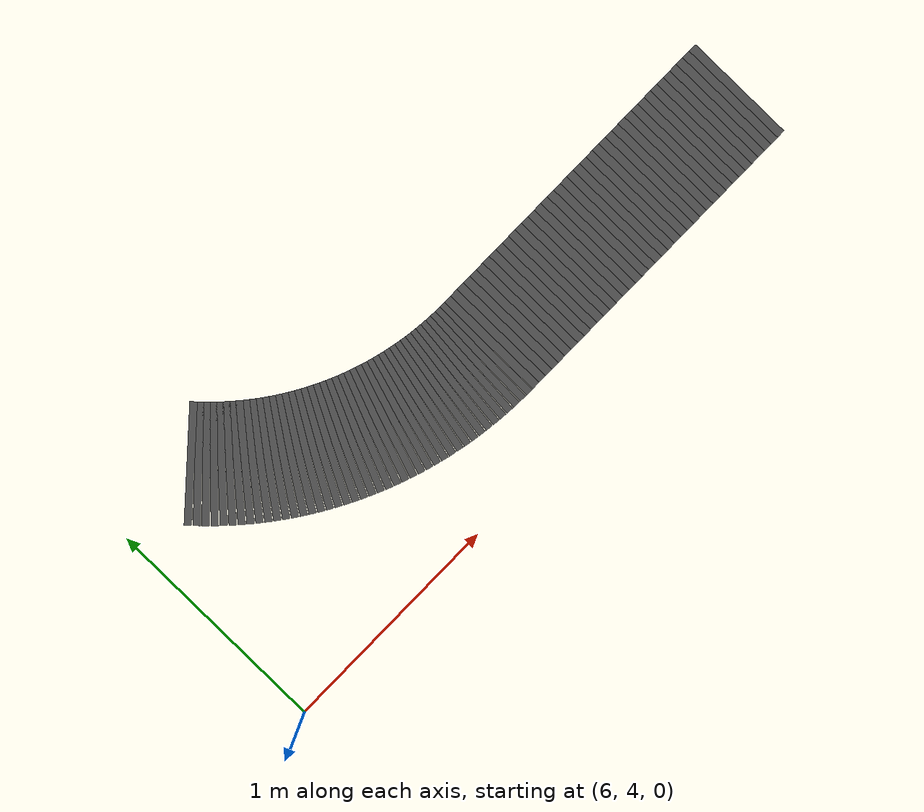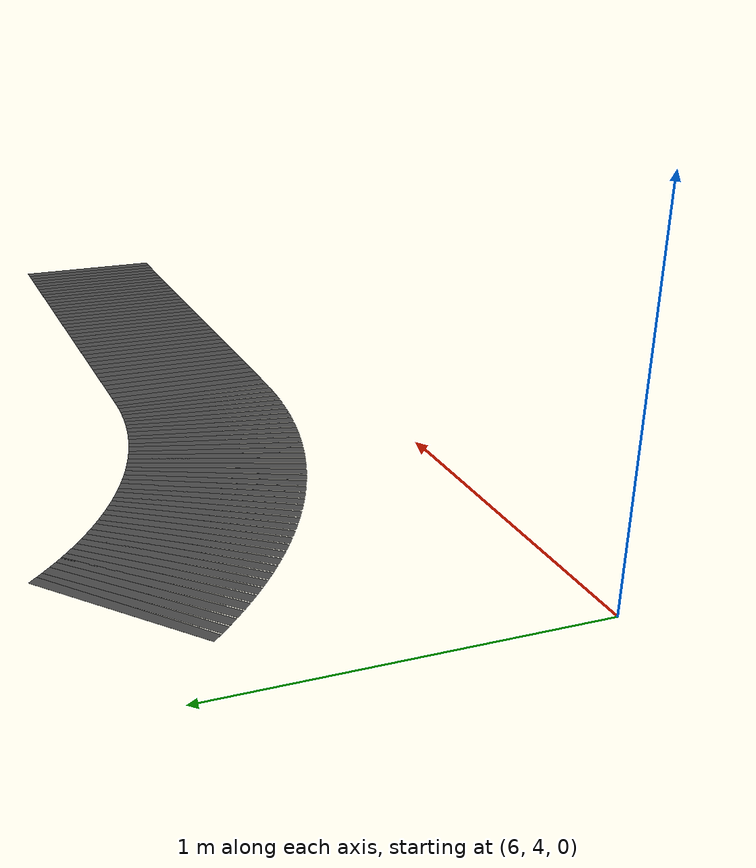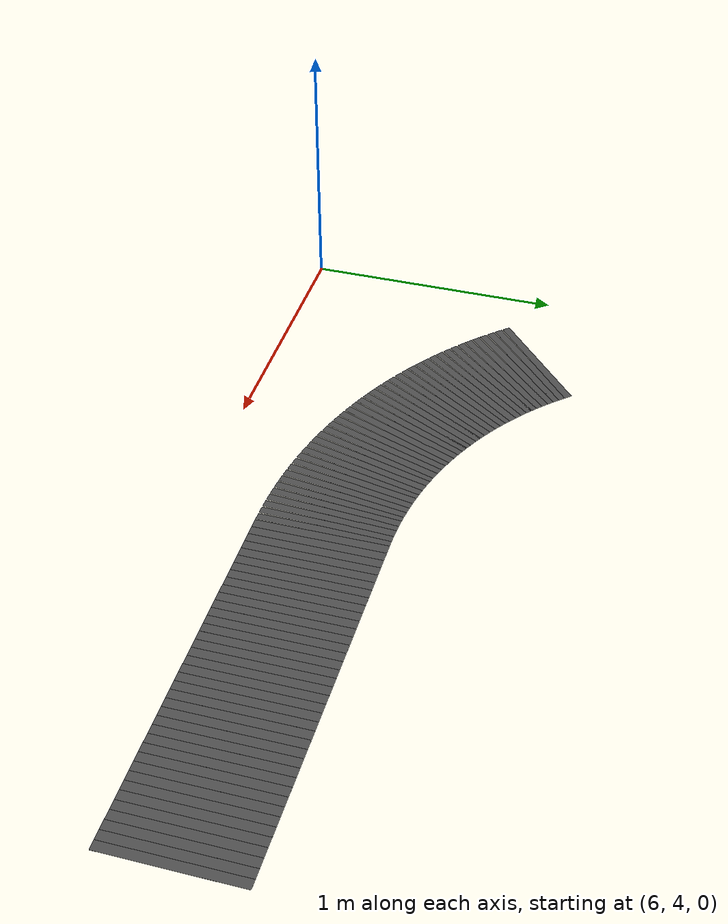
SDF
<sdf version="1.7">
 <model name="default">
  <model name="road_seg_391">
   <static>1</static>
   <link name="road_link">
    <visual name="road_visual">
     <geometry><box><size>0.031318 0.5 0.0001</size></box></geometry>
     <material>
      <script>
       <uri>model://road_material/materials/scripts</uri>
       <uri>model://road_material/materials/textures</uri>
       <name>MyRoad/Road</name>
      </script>
     </material>
    </visual>
    <collision name="road_collision"><geometry><box><size>0.031318 0.5 0.0001</size></box></geometry></collision>
   </link>
   <pose>6.39697 5.02976 0 0 0 -0.845049</pose>
  </model>
  <model name="road_seg_392">
   <static>1</static>
   <link name="road_link">
    <visual name="road_visual">
     <geometry><box><size>0.031318 0.5 0.0001</size></box></geometry>
     <material>
      <script>
       <uri>model://road_material/materials/scripts</uri>
       <uri>model://road_material/materials/textures</uri>
       <name>MyRoad/Road</name>
      </script>
     </material>
    </visual>
    <collision name="road_collision"><geometry><box><size>0.031318 0.5 0.0001</size></box></geometry></collision>
   </link>
   <pose>6.41799 5.00654 0 0 0 -0.825165</pose>
  </model>
  <model name="road_seg_393">
   <static>1</static>
   <link name="road_link">
    <visual name="road_visual">
     <geometry><box><size>0.031318 0.5 0.0001</size></box></geometry>
     <material>
      <script>
       <uri>model://road_material/materials/scripts</uri>
       <uri>model://road_material/materials/textures</uri>
       <name>MyRoad/Road</name>
      </script>
     </material>
    </visual>
    <collision name="road_collision"><geometry><box><size>0.031318 0.5 0.0001</size></box></geometry></collision>
   </link>
   <pose>6.43946 4.98375 0 0 0 -0.805282</pose>
  </model>
  <model name="road_seg_394">
   <static>1</static>
   <link name="road_link">
    <visual name="road_visual">
     <geometry><box><size>0.031318 0.5 0.0001</size></box></geometry>
     <material>
      <script>
       <uri>model://road_material/materials/scripts</uri>
       <uri>model://road_material/materials/textures</uri>
       <name>MyRoad/Road</name>
      </script>
     </material>
    </visual>
    <collision name="road_collision"><geometry><box><size>0.031318 0.5 0.0001</size></box></geometry></collision>
   </link>
   <pose>6.46138 4.96138 0 0 0 -0.785398</pose>
  </model>
  <model name="road_seg_395">
   <static>1</static>
   <link name="road_link">
    <visual name="road_visual">
     <geometry><box><size>0.031318 0.5 0.0001</size></box></geometry>
     <material>
      <script>
       <uri>model://road_material/materials/scripts</uri>
       <uri>model://road_material/materials/textures</uri>
       <name>MyRoad/Road</name>
      </script>
     </material>
    </visual>
    <collision name="road_collision"><geometry><box><size>0.031318 0.5 0.0001</size></box></geometry></collision>
   </link>
   <pose>6.48375 4.93946 0 0 0 -0.765515</pose>
  </model>
  <model name="road_seg_396">
   <static>1</static>
   <link name="road_link">
    <visual name="road_visual">
     <geometry><box><size>0.031318 0.5 0.0001</size></box></geometry>
     <material>
      <script>
       <uri>model://road_material/materials/scripts</uri>
       <uri>model://road_material/materials/textures</uri>
       <name>MyRoad/Road</name>
      </script>
     </material>
    </visual>
    <collision name="road_collision"><geometry><box><size>0.031318 0.5 0.0001</size></box></geometry></collision>
   </link>
   <pose>6.50654 4.91799 0 0 0 -0.745631</pose>
  </model>
  <model name="road_seg_397">
   <static>1</static>
   <link name="road_link">
    <visual name="road_visual">
     <geometry><box><size>0.031318 0.5 0.0001</size></box></geometry>
     <material>
      <script>
       <uri>model://road_material/materials/scripts</uri>
       <uri>model://road_material/materials/textures</uri>
       <name>MyRoad/Road</name>
      </script>
     </material>
    </visual>
    <collision name="road_collision"><geometry><box><size>0.031318 0.5 0.0001</size></box></geometry></collision>
   </link>
   <pose>6.52976 4.89697 0 0 0 -0.725748</pose>
  </model>
  <model name="road_seg_398">
   <static>1</static>
   <link name="road_link">
    <visual name="road_visual">
     <geometry><box><size>0.031318 0.5 0.0001</size></box></geometry>
     <material>
      <script>
       <uri>model://road_material/materials/scripts</uri>
       <uri>model://road_material/materials/textures</uri>
       <name>MyRoad/Road</name>
      </script>
     </material>
    </visual>
    <collision name="road_collision"><geometry><box><size>0.031318 0.5 0.0001</size></box></geometry></collision>
   </link>
   <pose>6.55339 4.87642 0 0 0 -0.705864</pose>
  </model>
  <model name="road_seg_399">
   <static>1</static>
   <link name="road_link">
    <visual name="road_visual">
     <geometry><box><size>0.031318 0.5 0.0001</size></box></geometry>
     <material>
      <script>
       <uri>model://road_material/materials/scripts</uri>
       <uri>model://road_material/materials/textures</uri>
       <name>MyRoad/Road</name>
      </script>
     </material>
    </visual>
    <collision name="road_collision"><geometry><box><size>0.031318 0.5 0.0001</size></box></geometry></collision>
   </link>
   <pose>6.57742 4.85635 0 0 0 -0.685981</pose>
  </model>
  <model name="road_seg_400">
   <static>1</static>
   <link name="road_link">
    <visual name="road_visual">
     <geometry><box><size>0.031318 0.5 0.0001</size></box></geometry>
     <material>
      <script>
       <uri>model://road_material/materials/scripts</uri>
       <uri>model://road_material/materials/textures</uri>
       <name>MyRoad/Road</name>
      </script>
     </material>
    </visual>
    <collision name="road_collision"><geometry><box><size>0.031318 0.5 0.0001</size></box></geometry></collision>
   </link>
   <pose>6.60185 4.83675 0 0 0 -0.666097</pose>
  </model>
  <model name="road_seg_401">
   <static>1</static>
   <link name="road_link">
    <visual name="road_visual">
     <geometry><box><size>0.031318 0.5 0.0001</size></box></geometry>
     <material>
      <script>
       <uri>model://road_material/materials/scripts</uri>
       <uri>model://road_material/materials/textures</uri>
       <name>MyRoad/Road</name>
      </script>
     </material>
    </visual>
    <collision name="road_collision"><geometry><box><size>0.031318 0.5 0.0001</size></box></geometry></collision>
   </link>
   <pose>6.62666 4.81765 0 0 0 -0.646214</pose>
  </model>
  <model name="road_seg_402">
   <static>1</static>
   <link name="road_link">
    <visual name="road_visual">
     <geometry><box><size>0.031318 0.5 0.0001</size></box></geometry>
     <material>
      <script>
       <uri>model://road_material/materials/scripts</uri>
       <uri>model://road_material/materials/textures</uri>
       <name>MyRoad/Road</name>
      </script>
     </material>
    </visual>
    <collision name="road_collision"><geometry><box><size>0.031318 0.5 0.0001</size></box></geometry></collision>
   </link>
   <pose>6.65185 4.79904 0 0 0 -0.62633</pose>
  </model>
  <model name="road_seg_403">
   <static>1</static>
   <link name="road_link">
    <visual name="road_visual">
     <geometry><box><size>0.031318 0.5 0.0001</size></box></geometry>
     <material>
      <script>
       <uri>model://road_material/materials/scripts</uri>
       <uri>model://road_material/materials/textures</uri>
       <name>MyRoad/Road</name>
      </script>
     </material>
    </visual>
    <collision name="road_collision"><geometry><box><size>0.031318 0.5 0.0001</size></box></geometry></collision>
   </link>
   <pose>6.6774 4.78093 0 0 0 -0.606447</pose>
  </model>
  <model name="road_seg_404">
   <static>1</static>
   <link name="road_link">
    <visual name="road_visual">
     <geometry><box><size>0.031318 0.5 0.0001</size></box></geometry>
     <material>
      <script>
       <uri>model://road_material/materials/scripts</uri>
       <uri>model://road_material/materials/textures</uri>
       <name>MyRoad/Road</name>
      </script>
     </material>
    </visual>
    <collision name="road_collision"><geometry><box><size>0.031318 0.5 0.0001</size></box></geometry></collision>
   </link>
   <pose>6.70331 4.76334 0 0 0 -0.586563</pose>
  </model>
  <model name="road_seg_405">
   <static>1</static>
   <link name="road_link">
    <visual name="road_visual">
     <geometry><box><size>0.031318 0.5 0.0001</size></box></geometry>
     <material>
      <script>
       <uri>model://road_material/materials/scripts</uri>
       <uri>model://road_material/materials/textures</uri>
       <name>MyRoad/Road</name>
      </script>
     </material>
    </visual>
    <collision name="road_collision"><geometry><box><size>0.031318 0.5 0.0001</size></box></geometry></collision>
   </link>
   <pose>6.72956 4.74627 0 0 0 -0.56668</pose>
  </model>
  <model name="road_seg_406">
   <static>1</static>
   <link name="road_link">
    <visual name="road_visual">
     <geometry><box><size>0.031318 0.5 0.0001</size></box></geometry>
     <material>
      <script>
       <uri>model://road_material/materials/scripts</uri>
       <uri>model://road_material/materials/textures</uri>
       <name>MyRoad/Road</name>
      </script>
     </material>
    </visual>
    <collision name="road_collision"><geometry><box><size>0.031318 0.5 0.0001</size></box></geometry></collision>
   </link>
   <pose>6.75615 4.72972 0 0 0 -0.546796</pose>
  </model>
  <model name="road_seg_407">
   <static>1</static>
   <link name="road_link">
    <visual name="road_visual">
     <geometry><box><size>0.031318 0.5 0.0001</size></box></geometry>
     <material>
      <script>
       <uri>model://road_material/materials/scripts</uri>
       <uri>model://road_material/materials/textures</uri>
       <name>MyRoad/Road</name>
      </script>
     </material>
    </visual>
    <collision name="road_collision"><geometry><box><size>0.031318 0.5 0.0001</size></box></geometry></collision>
   </link>
   <pose>6.78306 4.71371 0 0 0 -0.526913</pose>
  </model>
  <model name="road_seg_408">
   <static>1</static>
   <link name="road_link">
    <visual name="road_visual">
     <geometry><box><size>0.031318 0.5 0.0001</size></box></geometry>
     <material>
      <script>
       <uri>model://road_material/materials/scripts</uri>
       <uri>model://road_material/materials/textures</uri>
       <name>MyRoad/Road</name>
      </script>
     </material>
    </visual>
    <collision name="road_collision"><geometry><box><size>0.031318 0.5 0.0001</size></box></geometry></collision>
   </link>
   <pose>6.81029 4.69823 0 0 0 -0.507029</pose>
  </model>
  <model name="road_seg_409">
   <static>1</static>
   <link name="road_link">
    <visual name="road_visual">
     <geometry><box><size>0.031318 0.5 0.0001</size></box></geometry>
     <material>
      <script>
       <uri>model://road_material/materials/scripts</uri>
       <uri>model://road_material/materials/textures</uri>
       <name>MyRoad/Road</name>
      </script>
     </material>
    </visual>
    <collision name="road_collision"><geometry><box><size>0.031318 0.5 0.0001</size></box></geometry></collision>
   </link>
   <pose>6.83781 4.68329 0 0 0 -0.487146</pose>
  </model>
  <model name="road_seg_410">
   <static>1</static>
   <link name="road_link">
    <visual name="road_visual">
     <geometry><box><size>0.031318 0.5 0.0001</size></box></geometry>
     <material>
      <script>
       <uri>model://road_material/materials/scripts</uri>
       <uri>model://road_material/materials/textures</uri>
       <name>MyRoad/Road</name>
      </script>
     </material>
    </visual>
    <collision name="road_collision"><geometry><box><size>0.031318 0.5 0.0001</size></box></geometry></collision>
   </link>
   <pose>6.86563 4.66891 0 0 0 -0.467262</pose>
  </model>
  <model name="road_seg_411">
   <static>1</static>
   <link name="road_link">
    <visual name="road_visual">
     <geometry><box><size>0.031318 0.5 0.0001</size></box></geometry>
     <material>
      <script>
       <uri>model://road_material/materials/scripts</uri>
       <uri>model://road_material/materials/textures</uri>
       <name>MyRoad/Road</name>
      </script>
     </material>
    </visual>
    <collision name="road_collision"><geometry><box><size>0.031318 0.5 0.0001</size></box></geometry></collision>
   </link>
   <pose>6.89373 4.65508 0 0 0 -0.447379</pose>
  </model>
  <model name="road_seg_412">
   <static>1</static>
   <link name="road_link">
    <visual name="road_visual">
     <geometry><box><size>0.031318 0.5 0.0001</size></box></geometry>
     <material>
      <script>
       <uri>model://road_material/materials/scripts</uri>
       <uri>model://road_material/materials/textures</uri>
       <name>MyRoad/Road</name>
      </script>
     </material>
    </visual>
    <collision name="road_collision"><geometry><box><size>0.031318 0.5 0.0001</size></box></geometry></collision>
   </link>
   <pose>6.92209 4.64182 0 0 0 -0.427495</pose>
  </model>
  <model name="road_seg_413">
   <static>1</static>
   <link name="road_link">
    <visual name="road_visual">
     <geometry><box><size>0.031318 0.5 0.0001</size></box></geometry>
     <material>
      <script>
       <uri>model://road_material/materials/scripts</uri>
       <uri>model://road_material/materials/textures</uri>
       <name>MyRoad/Road</name>
      </script>
     </material>
    </visual>
    <collision name="road_collision"><geometry><box><size>0.031318 0.5 0.0001</size></box></geometry></collision>
   </link>
   <pose>6.95072 4.62912 0 0 0 -0.407612</pose>
  </model>
  <model name="road_seg_414">
   <static>1</static>
   <link name="road_link">
    <visual name="road_visual">
     <geometry><box><size>0.031318 0.5 0.0001</size></box></geometry>
     <material>
      <script>
       <uri>model://road_material/materials/scripts</uri>
       <uri>model://road_material/materials/textures</uri>
       <name>MyRoad/Road</name>
      </script>
     </material>
    </visual>
    <collision name="road_collision"><geometry><box><size>0.031318 0.5 0.0001</size></box></geometry></collision>
   </link>
   <pose>6.97959 4.61699 0 0 0 -0.387728</pose>
  </model>
  <model name="road_seg_415">
   <static>1</static>
   <link name="road_link">
    <visual name="road_visual">
     <geometry><box><size>0.031318 0.5 0.0001</size></box></geometry>
     <material>
      <script>
       <uri>model://road_material/materials/scripts</uri>
       <uri>model://road_material/materials/textures</uri>
       <name>MyRoad/Road</name>
      </script>
     </material>
    </visual>
    <collision name="road_collision"><geometry><box><size>0.031318 0.5 0.0001</size></box></geometry></collision>
   </link>
   <pose>7.0087 4.60544 0 0 0 -0.367845</pose>
  </model>
  <model name="road_seg_416">
   <static>1</static>
   <link name="road_link">
    <visual name="road_visual">
     <geometry><box><size>0.031318 0.5 0.0001</size></box></geometry>
     <material>
      <script>
       <uri>model://road_material/materials/scripts</uri>
       <uri>model://road_material/materials/textures</uri>
       <name>MyRoad/Road</name>
      </script>
     </material>
    </visual>
    <collision name="road_collision"><geometry><box><size>0.031318 0.5 0.0001</size></box></geometry></collision>
   </link>
   <pose>7.03803 4.59447 0 0 0 -0.347961</pose>
  </model>
  <model name="road_seg_417">
   <static>1</static>
   <link name="road_link">
    <visual name="road_visual">
     <geometry><box><size>0.031318 0.5 0.0001</size></box></geometry>
     <material>
      <script>
       <uri>model://road_material/materials/scripts</uri>
       <uri>model://road_material/materials/textures</uri>
       <name>MyRoad/Road</name>
      </script>
     </material>
    </visual>
    <collision name="road_collision"><geometry><box><size>0.031318 0.5 0.0001</size></box></geometry></collision>
   </link>
   <pose>7.06758 4.58408 0 0 0 -0.328078</pose>
  </model>
  <model name="road_seg_418">
   <static>1</static>
   <link name="road_link">
    <visual name="road_visual">
     <geometry><box><size>0.031318 0.5 0.0001</size></box></geometry>
     <material>
      <script>
       <uri>model://road_material/materials/scripts</uri>
       <uri>model://road_material/materials/textures</uri>
       <name>MyRoad/Road</name>
      </script>
     </material>
    </visual>
    <collision name="road_collision"><geometry><box><size>0.031318 0.5 0.0001</size></box></geometry></collision>
   </link>
   <pose>7.09732 4.57429 0 0 0 -0.308194</pose>
  </model>
  <model name="road_seg_419">
   <static>1</static>
   <link name="road_link">
    <visual name="road_visual">
     <geometry><box><size>0.031318 0.5 0.0001</size></box></geometry>
     <material>
      <script>
       <uri>model://road_material/materials/scripts</uri>
       <uri>model://road_material/materials/textures</uri>
       <name>MyRoad/Road</name>
      </script>
     </material>
    </visual>
    <collision name="road_collision"><geometry><box><size>0.031318 0.5 0.0001</size></box></geometry></collision>
   </link>
   <pose>7.12725 4.56509 0 0 0 -0.288311</pose>
  </model>
  <model name="road_seg_420">
   <static>1</static>
   <link name="road_link">
    <visual name="road_visual">
     <geometry><box><size>0.031318 0.5 0.0001</size></box></geometry>
     <material>
      <script>
       <uri>model://road_material/materials/scripts</uri>
       <uri>model://road_material/materials/textures</uri>
       <name>MyRoad/Road</name>
      </script>
     </material>
    </visual>
    <collision name="road_collision"><geometry><box><size>0.031318 0.5 0.0001</size></box></geometry></collision>
   </link>
   <pose>7.15736 4.55648 0 0 0 -0.268427</pose>
  </model>
  <model name="road_seg_421">
   <static>1</static>
   <link name="road_link">
    <visual name="road_visual">
     <geometry><box><size>0.031318 0.5 0.0001</size></box></geometry>
     <material>
      <script>
       <uri>model://road_material/materials/scripts</uri>
       <uri>model://road_material/materials/textures</uri>
       <name>MyRoad/Road</name>
      </script>
     </material>
    </visual>
    <collision name="road_collision"><geometry><box><size>0.031318 0.5 0.0001</size></box></geometry></collision>
   </link>
   <pose>7.18764 4.54847 0 0 0 -0.248544</pose>
  </model>
  <model name="road_seg_422">
   <static>1</static>
   <link name="road_link">
    <visual name="road_visual">
     <geometry><box><size>0.031318 0.5 0.0001</size></box></geometry>
     <material>
      <script>
       <uri>model://road_material/materials/scripts</uri>
       <uri>model://road_material/materials/textures</uri>
       <name>MyRoad/Road</name>
      </script>
     </material>
    </visual>
    <collision name="road_collision"><geometry><box><size>0.031318 0.5 0.0001</size></box></geometry></collision>
   </link>
   <pose>7.21807 4.54107 0 0 0 -0.22866</pose>
  </model>
  <model name="road_seg_423">
   <static>1</static>
   <link name="road_link">
    <visual name="road_visual">
     <geometry><box><size>0.031318 0.5 0.0001</size></box></geometry>
     <material>
      <script>
       <uri>model://road_material/materials/scripts</uri>
       <uri>model://road_material/materials/textures</uri>
       <name>MyRoad/Road</name>
      </script>
     </material>
    </visual>
    <collision name="road_collision"><geometry><box><size>0.031318 0.5 0.0001</size></box></geometry></collision>
   </link>
   <pose>7.24864 4.53428 0 0 0 -0.208777</pose>
  </model>
  <model name="road_seg_424">
   <static>1</static>
   <link name="road_link">
    <visual name="road_visual">
     <geometry><box><size>0.031318 0.5 0.0001</size></box></geometry>
     <material>
      <script>
       <uri>model://road_material/materials/scripts</uri>
       <uri>model://road_material/materials/textures</uri>
       <name>MyRoad/Road</name>
      </script>
     </material>
    </visual>
    <collision name="road_collision"><geometry><box><size>0.031318 0.5 0.0001</size></box></geometry></collision>
   </link>
   <pose>7.27934 4.52809 0 0 0 -0.188893</pose>
  </model>
  <model name="road_seg_425">
   <static>1</static>
   <link name="road_link">
    <visual name="road_visual">
     <geometry><box><size>0.031318 0.5 0.0001</size></box></geometry>
     <material>
      <script>
       <uri>model://road_material/materials/scripts</uri>
       <uri>model://road_material/materials/textures</uri>
       <name>MyRoad/Road</name>
      </script>
     </material>
    </visual>
    <collision name="road_collision"><geometry><box><size>0.031318 0.5 0.0001</size></box></geometry></collision>
   </link>
   <pose>7.31015 4.52252 0 0 0 -0.16901</pose>
  </model>
  <model name="road_seg_426">
   <static>1</static>
   <link name="road_link">
    <visual name="road_visual">
     <geometry><box><size>0.031318 0.5 0.0001</size></box></geometry>
     <material>
      <script>
       <uri>model://road_material/materials/scripts</uri>
       <uri>model://road_material/materials/textures</uri>
       <name>MyRoad/Road</name>
      </script>
     </material>
    </visual>
    <collision name="road_collision"><geometry><box><size>0.031318 0.5 0.0001</size></box></geometry></collision>
   </link>
   <pose>7.34107 4.51756 0 0 0 -0.149126</pose>
  </model>
  <model name="road_seg_427">
   <static>1</static>
   <link name="road_link">
    <visual name="road_visual">
     <geometry><box><size>0.031318 0.5 0.0001</size></box></geometry>
     <material>
      <script>
       <uri>model://road_material/materials/scripts</uri>
       <uri>model://road_material/materials/textures</uri>
       <name>MyRoad/Road</name>
      </script>
     </material>
    </visual>
    <collision name="road_collision"><geometry><box><size>0.031318 0.5 0.0001</size></box></geometry></collision>
   </link>
   <pose>7.37209 4.51321 0 0 0 -0.129243</pose>
  </model>
  <model name="road_seg_428">
   <static>1</static>
   <link name="road_link">
    <visual name="road_visual">
     <geometry><box><size>0.031318 0.5 0.0001</size></box></geometry>
     <material>
      <script>
       <uri>model://road_material/materials/scripts</uri>
       <uri>model://road_material/materials/textures</uri>
       <name>MyRoad/Road</name>
      </script>
     </material>
    </visual>
    <collision name="road_collision"><geometry><box><size>0.031318 0.5 0.0001</size></box></geometry></collision>
   </link>
   <pose>7.40318 4.50949 0 0 0 -0.109359</pose>
  </model>
  <model name="road_seg_429">
   <static>1</static>
   <link name="road_link">
    <visual name="road_visual">
     <geometry><box><size>0.031318 0.5 0.0001</size></box></geometry>
     <material>
      <script>
       <uri>model://road_material/materials/scripts</uri>
       <uri>model://road_material/materials/textures</uri>
       <name>MyRoad/Road</name>
      </script>
     </material>
    </visual>
    <collision name="road_collision"><geometry><box><size>0.031318 0.5 0.0001</size></box></geometry></collision>
   </link>
   <pose>7.43434 4.50638 0 0 0 -0.089476</pose>
  </model>
  <model name="road_seg_430">
   <static>1</static>
   <link name="road_link">
    <visual name="road_visual">
     <geometry><box><size>0.031318 0.5 0.0001</size></box></geometry>
     <material>
      <script>
       <uri>model://road_material/materials/scripts</uri>
       <uri>model://road_material/materials/textures</uri>
       <name>MyRoad/Road</name>
      </script>
     </material>
    </visual>
    <collision name="road_collision"><geometry><box><size>0.031318 0.5 0.0001</size></box></geometry></collision>
   </link>
   <pose>7.46556 4.50389 0 0 0 -0.069592</pose>
  </model>
  <model name="road_seg_431">
   <static>1</static>
   <link name="road_link">
    <visual name="road_visual">
     <geometry><box><size>0.031318 0.5 0.0001</size></box></geometry>
     <material>
      <script>
       <uri>model://road_material/materials/scripts</uri>
       <uri>model://road_material/materials/textures</uri>
       <name>MyRoad/Road</name>
      </script>
     </material>
    </visual>
    <collision name="road_collision"><geometry><box><size>0.031318 0.5 0.0001</size></box></geometry></collision>
   </link>
   <pose>7.49682 4.50202 0 0 0 -0.049709</pose>
  </model>
  <model name="road_seg_432">
   <static>1</static>
   <link name="road_link">
    <visual name="road_visual">
     <geometry><box><size>0.031318 0.5 0.0001</size></box></geometry>
     <material>
      <script>
       <uri>model://road_material/materials/scripts</uri>
       <uri>model://road_material/materials/textures</uri>
       <name>MyRoad/Road</name>
      </script>
     </material>
    </visual>
    <collision name="road_collision"><geometry><box><size>0.031318 0.5 0.0001</size></box></geometry></collision>
   </link>
   <pose>7.52811 4.50078 0 0 0 -0.029825</pose>
  </model>
  <model name="road_seg_433">
   <static>1</static>
   <link name="road_link">
    <visual name="road_visual">
     <geometry><box><size>0.031318 0.5 0.0001</size></box></geometry>
     <material>
      <script>
       <uri>model://road_material/materials/scripts</uri>
       <uri>model://road_material/materials/textures</uri>
       <name>MyRoad/Road</name>
      </script>
     </material>
    </visual>
    <collision name="road_collision"><geometry><box><size>0.031318 0.5 0.0001</size></box></geometry></collision>
   </link>
   <pose>7.55942 4.50016 0 0 0 -0.009942</pose>
  </model>
  <model name="road_seg_434">
   <static>1</static>
   <link name="road_link">
    <visual name="road_visual">
     <geometry><box><size>0.037275 0.5 0.0001</size></box></geometry>
     <material>
      <script>
       <uri>model://road_material/materials/scripts</uri>
       <uri>model://road_material/materials/textures</uri>
       <name>MyRoad/Road</name>
      </script>
     </material>
    </visual>
    <collision name="road_collision"><geometry><box><size>0.037275 0.5 0.0001</size></box></geometry></collision>
   </link>
   <pose>7.59372 4.5 0 0 -0 0</pose>
  </model>
  <model name="road_seg_435">
   <static>1</static>
   <link name="road_link">
    <visual name="road_visual">
     <geometry><box><size>0.037275 0.5 0.0001</size></box></geometry>
     <material>
      <script>
       <uri>model://road_material/materials/scripts</uri>
       <uri>model://road_material/materials/textures</uri>
       <name>MyRoad/Road</name>
      </script>
     </material>
    </visual>
    <collision name="road_collision"><geometry><box><size>0.037275 0.5 0.0001</size></box></geometry></collision>
   </link>
   <pose>7.63099 4.5 0 0 -0 0</pose>
  </model>
  <model name="road_seg_436">
   <static>1</static>
   <link name="road_link">
    <visual name="road_visual">
     <geometry><box><size>0.037275 0.5 0.0001</size></box></geometry>
     <material>
      <script>
       <uri>model://road_material/materials/scripts</uri>
       <uri>model://road_material/materials/textures</uri>
       <name>MyRoad/Road</name>
      </script>
     </material>
    </visual>
    <collision name="road_collision"><geometry><box><size>0.037275 0.5 0.0001</size></box></geometry></collision>
   </link>
   <pose>7.66827 4.5 0 0 -0 0</pose>
  </model>
  <model name="road_seg_437">
   <static>1</static>
   <link name="road_link">
    <visual name="road_visual">
     <geometry><box><size>0.037275 0.5 0.0001</size></box></geometry>
     <material>
      <script>
       <uri>model://road_material/materials/scripts</uri>
       <uri>model://road_material/materials/textures</uri>
       <name>MyRoad/Road</name>
      </script>
     </material>
    </visual>
    <collision name="road_collision"><geometry><box><size>0.037275 0.5 0.0001</size></box></geometry></collision>
   </link>
   <pose>7.70554 4.5 0 0 -0 0</pose>
  </model>
  <model name="road_seg_438">
   <static>1</static>
   <link name="road_link">
    <visual name="road_visual">
     <geometry><box><size>0.037275 0.5 0.0001</size></box></geometry>
     <material>
      <script>
       <uri>model://road_material/materials/scripts</uri>
       <uri>model://road_material/materials/textures</uri>
       <name>MyRoad/Road</name>
      </script>
     </material>
    </visual>
    <collision name="road_collision"><geometry><box><size>0.037275 0.5 0.0001</size></box></geometry></collision>
   </link>
   <pose>7.74282 4.5 0 0 -0 0</pose>
  </model>
  <model name="road_seg_439">
   <static>1</static>
   <link name="road_link">
    <visual name="road_visual">
     <geometry><box><size>0.037275 0.5 0.0001</size></box></geometry>
     <material>
      <script>
       <uri>model://road_material/materials/scripts</uri>
       <uri>model://road_material/materials/textures</uri>
       <name>MyRoad/Road</name>
      </script>
     </material>
    </visual>
    <collision name="road_collision"><geometry><box><size>0.037275 0.5 0.0001</size></box></geometry></collision>
   </link>
   <pose>7.78009 4.5 0 0 -0 0</pose>
  </model>
  <model name="road_seg_440">
   <static>1</static>
   <link name="road_link">
    <visual name="road_visual">
     <geometry><box><size>0.037275 0.5 0.0001</size></box></geometry>
     <material>
      <script>
       <uri>model://road_material/materials/scripts</uri>
       <uri>model://road_material/materials/textures</uri>
       <name>MyRoad/Road</name>
      </script>
     </material>
    </visual>
    <collision name="road_collision"><geometry><box><size>0.037275 0.5 0.0001</size></box></geometry></collision>
   </link>
   <pose>7.81737 4.5 0 0 -0 0</pose>
  </model>
  <model name="road_seg_441">
   <static>1</static>
   <link name="road_link">
    <visual name="road_visual">
     <geometry><box><size>0.037275 0.5 0.0001</size></box></geometry>
     <material>
      <script>
       <uri>model://road_material/materials/scripts</uri>
       <uri>model://road_material/materials/textures</uri>
       <name>MyRoad/Road</name>
      </script>
     </material>
    </visual>
    <collision name="road_collision"><geometry><box><size>0.037275 0.5 0.0001</size></box></geometry></collision>
   </link>
   <pose>7.85464 4.5 0 0 -0 0</pose>
  </model>
  <model name="road_seg_442">
   <static>1</static>
   <link name="road_link">
    <visual name="road_visual">
     <geometry><box><size>0.037275 0.5 0.0001</size></box></geometry>
     <material>
      <script>
       <uri>model://road_material/materials/scripts</uri>
       <uri>model://road_material/materials/textures</uri>
       <name>MyRoad/Road</name>
      </script>
     </material>
    </visual>
    <collision name="road_collision"><geometry><box><size>0.037275 0.5 0.0001</size></box></geometry></collision>
   </link>
   <pose>7.89192 4.5 0 0 -0 0</pose>
  </model>
  <model name="road_seg_443">
   <static>1</static>
   <link name="road_link">
    <visual name="road_visual">
     <geometry><box><size>0.037275 0.5 0.0001</size></box></geometry>
     <material>
      <script>
       <uri>model://road_material/materials/scripts</uri>
       <uri>model://road_material/materials/textures</uri>
       <name>MyRoad/Road</name>
      </script>
     </material>
    </visual>
    <collision name="road_collision"><geometry><box><size>0.037275 0.5 0.0001</size></box></geometry></collision>
   </link>
   <pose>7.92919 4.5 0 0 -0 0</pose>
  </model>
  <model name="road_seg_444">
   <static>1</static>
   <link name="road_link">
    <visual name="road_visual">
     <geometry><box><size>0.037275 0.5 0.0001</size></box></geometry>
     <material>
      <script>
       <uri>model://road_material/materials/scripts</uri>
       <uri>model://road_material/materials/textures</uri>
       <name>MyRoad/Road</name>
      </script>
     </material>
    </visual>
    <collision name="road_collision"><geometry><box><size>0.037275 0.5 0.0001</size></box></geometry></collision>
   </link>
   <pose>7.96647 4.5 0 0 -0 0</pose>
  </model>
  <model name="road_seg_445">
   <static>1</static>
   <link name="road_link">
    <visual name="road_visual">
     <geometry><box><size>0.037275 0.5 0.0001</size></box></geometry>
     <material>
      <script>
       <uri>model://road_material/materials/scripts</uri>
       <uri>model://road_material/materials/textures</uri>
       <name>MyRoad/Road</name>
      </script>
     </material>
    </visual>
    <collision name="road_collision"><geometry><box><size>0.037275 0.5 0.0001</size></box></geometry></collision>
   </link>
   <pose>8.00374 4.5 0 0 -0 0</pose>
  </model>
  <model name="road_seg_446">
   <static>1</static>
   <link name="road_link">
    <visual name="road_visual">
     <geometry><box><size>0.037275 0.5 0.0001</size></box></geometry>
     <material>
      <script>
       <uri>model://road_material/materials/scripts</uri>
       <uri>model://road_material/materials/textures</uri>
       <name>MyRoad/Road</name>
      </script>
     </material>
    </visual>
    <collision name="road_collision"><geometry><box><size>0.037275 0.5 0.0001</size></box></geometry></collision>
   </link>
   <pose>8.04102 4.5 0 0 -0 0</pose>
  </model>
  <model name="road_seg_447">
   <static>1</static>
   <link name="road_link">
    <visual name="road_visual">
     <geometry><box><size>0.037275 0.5 0.0001</size></box></geometry>
     <material>
      <script>
       <uri>model://road_material/materials/scripts</uri>
       <uri>model://road_material/materials/textures</uri>
       <name>MyRoad/Road</name>
      </script>
     </material>
    </visual>
    <collision name="road_collision"><geometry><box><size>0.037275 0.5 0.0001</size></box></geometry></collision>
   </link>
   <pose>8.07829 4.5 0 0 -0 0</pose>
  </model>
  <model name="road_seg_448">
   <static>1</static>
   <link name="road_link">
    <visual name="road_visual">
     <geometry><box><size>0.037275 0.5 0.0001</size></box></geometry>
     <material>
      <script>
       <uri>model://road_material/materials/scripts</uri>
       <uri>model://road_material/materials/textures</uri>
       <name>MyRoad/Road</name>
      </script>
     </material>
    </visual>
    <collision name="road_collision"><geometry><box><size>0.037275 0.5 0.0001</size></box></geometry></collision>
   </link>
   <pose>8.11556 4.5 0 0 -0 0</pose>
  </model>
  <model name="road_seg_449">
   <static>1</static>
   <link name="road_link">
    <visual name="road_visual">
     <geometry><box><size>0.037275 0.5 0.0001</size></box></geometry>
     <material>
      <script>
       <uri>model://road_material/materials/scripts</uri>
       <uri>model://road_material/materials/textures</uri>
       <name>MyRoad/Road</name>
      </script>
     </material>
    </visual>
    <collision name="road_collision"><geometry><box><size>0.037275 0.5 0.0001</size></box></geometry></collision>
   </link>
   <pose>8.15284 4.5 0 0 -0 0</pose>
  </model>
  <model name="road_seg_450">
   <static>1</static>
   <link name="road_link">
    <visual name="road_visual">
     <geometry><box><size>0.037275 0.5 0.0001</size></box></geometry>
     <material>
      <script>
       <uri>model://road_material/materials/scripts</uri>
       <uri>model://road_material/materials/textures</uri>
       <name>MyRoad/Road</name>
      </script>
     </material>
    </visual>
    <collision name="road_collision"><geometry><box><size>0.037275 0.5 0.0001</size></box></geometry></collision>
   </link>
   <pose>8.19011 4.5 0 0 -0 0</pose>
  </model>
  <model name="road_seg_451">
   <static>1</static>
   <link name="road_link">
    <visual name="road_visual">
     <geometry><box><size>0.037275 0.5 0.0001</size></box></geometry>
     <material>
      <script>
       <uri>model://road_material/materials/scripts</uri>
       <uri>model://road_material/materials/textures</uri>
       <name>MyRoad/Road</name>
      </script>
     </material>
    </visual>
    <collision name="road_collision"><geometry><box><size>0.037275 0.5 0.0001</size></box></geometry></collision>
   </link>
   <pose>8.22739 4.5 0 0 -0 0</pose>
  </model>
  <model name="road_seg_452">
   <static>1</static>
   <link name="road_link">
    <visual name="road_visual">
     <geometry><box><size>0.037275 0.5 0.0001</size></box></geometry>
     <material>
      <script>
       <uri>model://road_material/materials/scripts</uri>
       <uri>model://road_material/materials/textures</uri>
       <name>MyRoad/Road</name>
      </script>
     </material>
    </visual>
    <collision name="road_collision"><geometry><box><size>0.037275 0.5 0.0001</size></box></geometry></collision>
   </link>
   <pose>8.26466 4.5 0 0 -0 0</pose>
  </model>
  <model name="road_seg_453">
   <static>1</static>
   <link name="road_link">
    <visual name="road_visual">
     <geometry><box><size>0.037275 0.5 0.0001</size></box></geometry>
     <material>
      <script>
       <uri>model://road_material/materials/scripts</uri>
       <uri>model://road_material/materials/textures</uri>
       <name>MyRoad/Road</name>
      </script>
     </material>
    </visual>
    <collision name="road_collision"><geometry><box><size>0.037275 0.5 0.0001</size></box></geometry></collision>
   </link>
   <pose>8.30194 4.5 0 0 -0 0</pose>
  </model>
  <model name="road_seg_454">
   <static>1</static>
   <link name="road_link">
    <visual name="road_visual">
     <geometry><box><size>0.037275 0.5 0.0001</size></box></geometry>
     <material>
      <script>
       <uri>model://road_material/materials/scripts</uri>
       <uri>model://road_material/materials/textures</uri>
       <name>MyRoad/Road</name>
      </script>
     </material>
    </visual>
    <collision name="road_collision"><geometry><box><size>0.037275 0.5 0.0001</size></box></geometry></collision>
   </link>
   <pose>8.33921 4.5 0 0 -0 0</pose>
  </model>
  <model name="road_seg_455">
   <static>1</static>
   <link name="road_link">
    <visual name="road_visual">
     <geometry><box><size>0.037275 0.5 0.0001</size></box></geometry>
     <material>
      <script>
       <uri>model://road_material/materials/scripts</uri>
       <uri>model://road_material/materials/textures</uri>
       <name>MyRoad/Road</name>
      </script>
     </material>
    </visual>
    <collision name="road_collision"><geometry><box><size>0.037275 0.5 0.0001</size></box></geometry></collision>
   </link>
   <pose>8.37649 4.5 0 0 -0 0</pose>
  </model>
  <model name="road_seg_456">
   <static>1</static>
   <link name="road_link">
    <visual name="road_visual">
     <geometry><box><size>0.037275 0.5 0.0001</size></box></geometry>
     <material>
      <script>
       <uri>model://road_material/materials/scripts</uri>
       <uri>model://road_material/materials/textures</uri>
       <name>MyRoad/Road</name>
      </script>
     </material>
    </visual>
    <collision name="road_collision"><geometry><box><size>0.037275 0.5 0.0001</size></box></geometry></collision>
   </link>
   <pose>8.41376 4.5 0 0 -0 0</pose>
  </model>
  <model name="road_seg_457">
   <static>1</static>
   <link name="road_link">
    <visual name="road_visual">
     <geometry><box><size>0.037275 0.5 0.0001</size></box></geometry>
     <material>
      <script>
       <uri>model://road_material/materials/scripts</uri>
       <uri>model://road_material/materials/textures</uri>
       <name>MyRoad/Road</name>
      </script>
     </material>
    </visual>
    <collision name="road_collision"><geometry><box><size>0.037275 0.5 0.0001</size></box></geometry></collision>
   </link>
   <pose>8.45104 4.5 0 0 -0 0</pose>
  </model>
  <model name="road_seg_458">
   <static>1</static>
   <link name="road_link">
    <visual name="road_visual">
     <geometry><box><size>0.037275 0.5 0.0001</size></box></geometry>
     <material>
      <script>
       <uri>model://road_material/materials/scripts</uri>
       <uri>model://road_material/materials/textures</uri>
       <name>MyRoad/Road</name>
      </script>
     </material>
    </visual>
    <collision name="road_collision"><geometry><box><size>0.037275 0.5 0.0001</size></box></geometry></collision>
   </link>
   <pose>8.48831 4.5 0 0 -0 0</pose>
  </model>
  <model name="road_seg_459">
   <static>1</static>
   <link name="road_link">
    <visual name="road_visual">
     <geometry><box><size>0.037275 0.5 0.0001</size></box></geometry>
     <material>
      <script>
       <uri>model://road_material/materials/scripts</uri>
       <uri>model://road_material/materials/textures</uri>
       <name>MyRoad/Road</name>
      </script>
     </material>
    </visual>
    <collision name="road_collision"><geometry><box><size>0.037275 0.5 0.0001</size></box></geometry></collision>
   </link>
   <pose>8.52559 4.5 0 0 -0 0</pose>
  </model>
  <model name="road_seg_460">
   <static>1</static>
   <link name="road_link">
    <visual name="road_visual">
     <geometry><box><size>0.037275 0.5 0.0001</size></box></geometry>
     <material>
      <script>
       <uri>model://road_material/materials/scripts</uri>
       <uri>model://road_material/materials/textures</uri>
       <name>MyRoad/Road</name>
      </script>
     </material>
    </visual>
    <collision name="road_collision"><geometry><box><size>0.037275 0.5 0.0001</size></box></geometry></collision>
   </link>
   <pose>8.56286 4.5 0 0 -0 0</pose>
  </model>
  <model name="road_seg_461">
   <static>1</static>
   <link name="road_link">
    <visual name="road_visual">
     <geometry><box><size>0.037275 0.5 0.0001</size></box></geometry>
     <material>
      <script>
       <uri>model://road_material/materials/scripts</uri>
       <uri>model://road_material/materials/textures</uri>
       <name>MyRoad/Road</name>
      </script>
     </material>
    </visual>
    <collision name="road_collision"><geometry><box><size>0.037275 0.5 0.0001</size></box></geometry></collision>
   </link>
   <pose>8.60014 4.5 0 0 -0 0</pose>
  </model>
  <model name="road_seg_462">
   <static>1</static>
   <link name="road_link">
    <visual name="road_visual">
     <geometry><box><size>0.037275 0.5 0.0001</size></box></geometry>
     <material>
      <script>
       <uri>model://road_material/materials/scripts</uri>
       <uri>model://road_material/materials/textures</uri>
       <name>MyRoad/Road</name>
      </script>
     </material>
    </visual>
    <collision name="road_collision"><geometry><box><size>0.037275 0.5 0.0001</size></box></geometry></collision>
   </link>
   <pose>8.63741 4.5 0 0 -0 0</pose>
  </model>
  <model name="road_seg_463">
   <static>1</static>
   <link name="road_link">
    <visual name="road_visual">
     <geometry><box><size>0.037275 0.5 0.0001</size></box></geometry>
     <material>
      <script>
       <uri>model://road_material/materials/scripts</uri>
       <uri>model://road_material/materials/textures</uri>
       <name>MyRoad/Road</name>
      </script>
     </material>
    </visual>
    <collision name="road_collision"><geometry><box><size>0.037275 0.5 0.0001</size></box></geometry></collision>
   </link>
   <pose>8.67469 4.5 0 0 -0 0</pose>
  </model>
  <model name="road_seg_464">
   <static>1</static>
   <link name="road_link">
    <visual name="road_visual">
     <geometry><box><size>0.037275 0.5 0.0001</size></box></geometry>
     <material>
      <script>
       <uri>model://road_material/materials/scripts</uri>
       <uri>model://road_material/materials/textures</uri>
       <name>MyRoad/Road</name>
      </script>
     </material>
    </visual>
    <collision name="road_collision"><geometry><box><size>0.037275 0.5 0.0001</size></box></geometry></collision>
   </link>
   <pose>8.71196 4.5 0 0 -0 0</pose>
  </model>
  <model name="road_seg_465">
   <static>1</static>
   <link name="road_link">
    <visual name="road_visual">
     <geometry><box><size>0.037275 0.5 0.0001</size></box></geometry>
     <material>
      <script>
       <uri>model://road_material/materials/scripts</uri>
       <uri>model://road_material/materials/textures</uri>
       <name>MyRoad/Road</name>
      </script>
     </material>
    </visual>
    <collision name="road_collision"><geometry><box><size>0.037275 0.5 0.0001</size></box></geometry></collision>
   </link>
   <pose>8.74924 4.5 0 0 -0 0</pose>
  </model>
  <model name="road_seg_466">
   <static>1</static>
   <link name="road_link">
    <visual name="road_visual">
     <geometry><box><size>0.037275 0.5 0.0001</size></box></geometry>
     <material>
      <script>
       <uri>model://road_material/materials/scripts</uri>
       <uri>model://road_material/materials/textures</uri>
       <name>MyRoad/Road</name>
      </script>
     </material>
    </visual>
    <collision name="road_collision"><geometry><box><size>0.037275 0.5 0.0001</size></box></geometry></collision>
   </link>
   <pose>8.78651 4.5 0 0 -0 0</pose>
  </model>
  <model name="road_seg_467">
   <static>1</static>
   <link name="road_link">
    <visual name="road_visual">
     <geometry><box><size>0.037275 0.5 0.0001</size></box></geometry>
     <material>
      <script>
       <uri>model://road_material/materials/scripts</uri>
       <uri>model://road_material/materials/textures</uri>
       <name>MyRoad/Road</name>
      </script>
     </material>
    </visual>
    <collision name="road_collision"><geometry><box><size>0.037275 0.5 0.0001</size></box></geometry></collision>
   </link>
   <pose>8.82379 4.5 0 0 -0 0</pose>
  </model>
  <model name="road_seg_468">
   <static>1</static>
   <link name="road_link">
    <visual name="road_visual">
     <geometry><box><size>0.037275 0.5 0.0001</size></box></geometry>
     <material>
      <script>
       <uri>model://road_material/materials/scripts</uri>
       <uri>model://road_material/materials/textures</uri>
       <name>MyRoad/Road</name>
      </script>
     </material>
    </visual>
    <collision name="road_collision"><geometry><box><size>0.037275 0.5 0.0001</size></box></geometry></collision>
   </link>
   <pose>8.86106 4.5 0 0 -0 0</pose>
  </model>
  <model name="road_seg_469">
   <static>1</static>
   <link name="road_link">
    <visual name="road_visual">
     <geometry><box><size>0.037275 0.5 0.0001</size></box></geometry>
     <material>
      <script>
       <uri>model://road_material/materials/scripts</uri>
       <uri>model://road_material/materials/textures</uri>
       <name>MyRoad/Road</name>
      </script>
     </material>
    </visual>
    <collision name="road_collision"><geometry><box><size>0.037275 0.5 0.0001</size></box></geometry></collision>
   </link>
   <pose>8.89834 4.5 0 0 -0 0</pose>
  </model>
  <model name="road_seg_470">
   <static>1</static>
   <link name="road_link">
    <visual name="road_visual">
     <geometry><box><size>0.037275 0.5 0.0001</size></box></geometry>
     <material>
      <script>
       <uri>model://road_material/materials/scripts</uri>
       <uri>model://road_material/materials/textures</uri>
       <name>MyRoad/Road</name>
      </script>
     </material>
    </visual>
    <collision name="road_collision"><geometry><box><size>0.037275 0.5 0.0001</size></box></geometry></collision>
   </link>
   <pose>8.93561 4.5 0 0 -0 0</pose>
  </model>
  <model name="road_seg_471">
   <static>1</static>
   <link name="road_link">
    <visual name="road_visual">
     <geometry><box><size>0.037275 0.5 0.0001</size></box></geometry>
     <material>
      <script>
       <uri>model://road_material/materials/scripts</uri>
       <uri>model://road_material/materials/textures</uri>
       <name>MyRoad/Road</name>
      </script>
     </material>
    </visual>
    <collision name="road_collision"><geometry><box><size>0.037275 0.5 0.0001</size></box></geometry></collision>
   </link>
   <pose>8.97289 4.5 0 0 -0 0</pose>
  </model>
  <model name="road_seg_472">
   <static>1</static>
   <link name="road_link">
    <visual name="road_visual">
     <geometry><box><size>0.037275 0.5 0.0001</size></box></geometry>
     <material>
      <script>
       <uri>model://road_material/materials/scripts</uri>
       <uri>model://road_material/materials/textures</uri>
       <name>MyRoad/Road</name>
      </script>
     </material>
    </visual>
    <collision name="road_collision"><geometry><box><size>0.037275 0.5 0.0001</size></box></geometry></collision>
   </link>
   <pose>9.01016 4.5 0 0 -0 0</pose>
  </model>
 </model>
</sdf>
